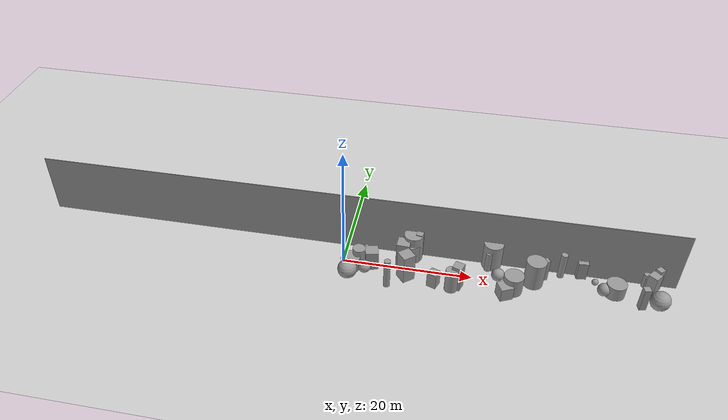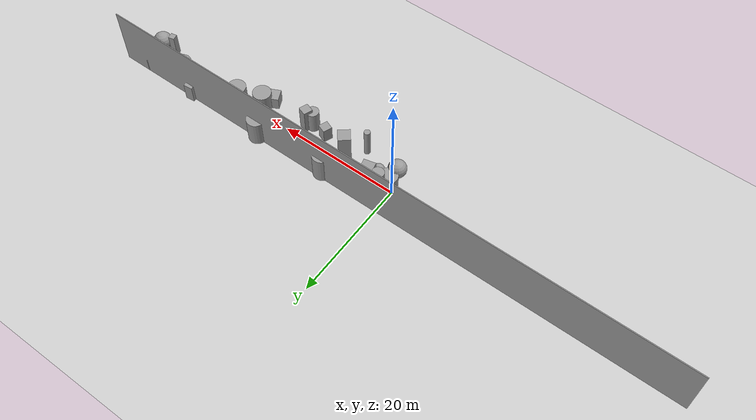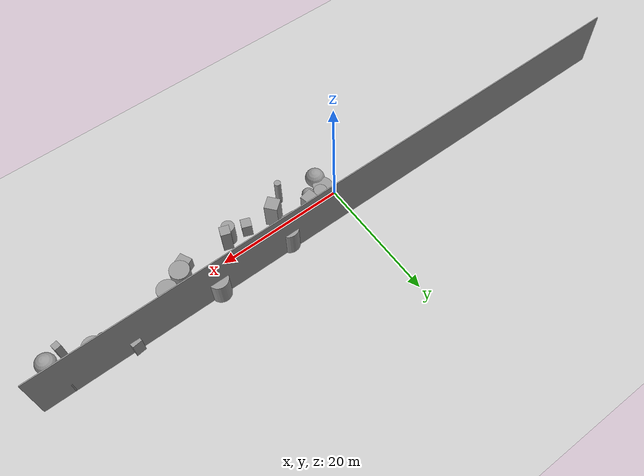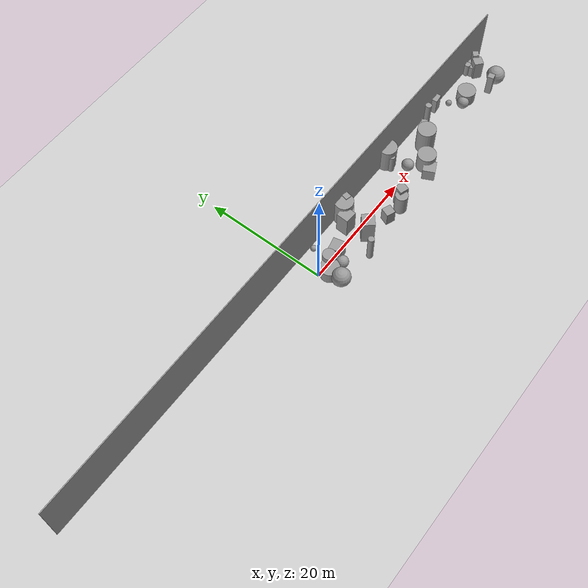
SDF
<sdf version="1.6">
 <world name="default">
  <model name="ground_plane">
   <static>1</static>
   <link name="link">
    <collision name="collision">
     <geometry><plane><normal>0 0 1</normal><size>100 100</size></plane></geometry>
     <surface>
      <contact><collide_bitmask>65535</collide_bitmask></contact>
      <friction><ode><mu>100</mu><mu2>50</mu2></ode></friction>
     </surface>
    </collision>
    <visual name="visual">
     <cast_shadows>0</cast_shadows>
     <geometry><plane><normal>0 0 1</normal><size>100 100</size></plane></geometry>
     <material>
      <script><uri>file://media/materials/scripts/gazebo.material</uri><name>Gazebo/Grey</name></script>
     </material>
    </visual>
   </link>
  </model>
  <model name="wall_100m_clone">
   <link name="Wall_0">
    <pose>2e-06 0 0 0 -0 3.14159</pose>
    <inertial>
     <mass>1</mass>
     <inertia><ixx>1</ixx><ixy>0</ixy><ixz>0</ixz><iyy>1</iyy><iyz>0</iyz><izz>1</izz></inertia>
    </inertial>
    <visual name="Wall_0_Visual">
     <pose>0 0 1.25 0 -0 0</pose>
     <geometry><box><size>100.75 0.15 10</size></box></geometry>
     <material>
      <script><uri>file://media/materials/scripts/gazebo.material</uri><name>Gazebo/Grey</name></script>
      <ambient>1 1 1 1</ambient>
      <shader type="vertex"><normal_map>__default__</normal_map></shader>
      <diffuse>0.7 0.7 0.7 1</diffuse>
      <specular>0.01 0.01 0.01 1</specular>
      <emissive>0 0 0 1</emissive>
     </material>
     <meta><layer>0</layer></meta>
    </visual>
    <collision name="Wall_0_Collision">
     <pose>0 0 1.25 0 -0 0</pose>
     <geometry><box><size>100.75 0.15 10</size></box></geometry>
     <surface>
      <friction>
       <ode><mu>1</mu><mu2>1</mu2><fdir1>0 0 0</fdir1><slip1>0</slip1><slip2>0</slip2></ode>
       <torsional>
        <coefficient>1</coefficient>
        <patch_radius>0</patch_radius>
        <surface_radius>0</surface_radius>
        <use_patch_radius>1</use_patch_radius>
        <ode><slip>0</slip></ode>
       </torsional>
      </friction>
      <bounce><restitution_coefficient>0</restitution_coefficient><threshold>1e+06</threshold></bounce>
      <contact>
       <collide_without_contact>0</collide_without_contact>
       <collide_without_contact_bitmask>1</collide_without_contact_bitmask>
       <collide_bitmask>1</collide_bitmask>
       <ode>
        <soft_cfm>0</soft_cfm>
        <soft_erp>0.2</soft_erp>
        <kp>1e+13</kp>
        <kd>1</kd>
        <max_vel>0.01</max_vel>
        <min_depth>0</min_depth>
       </ode>
       <bullet>
        <split_impulse>1</split_impulse>
        <split_impulse_penetration_threshold>-0.01</split_impulse_penetration_threshold>
        <soft_cfm>0</soft_cfm>
        <soft_erp>0.2</soft_erp>
        <kp>1e+13</kp>
        <kd>1</kd>
       </bullet>
      </contact>
     </surface>
    </collision>
   </link>
   <static>1</static>
   <pose>-0.005816 4 3.5 0 -0 0</pose>
  </model>
  <model name="large_box_0">
   <static>1</static>
   <pose>24.97334898626285 -2.784041211516433 0 0 -0 5.162409846723457</pose>
   <link name="link">
    <inertial>
     <mass>1</mass>
     <inertia><ixx>0.1</ixx><ixy>0</ixy><ixz>0</ixz><iyy>0.1</iyy><iyz>0</iyz><izz>0.1</izz></inertia>
    </inertial>
    <collision name="collision"><geometry><box><size>2 2 4.185259446446912</size></box></geometry></collision>
    <visual name="visual">
     <geometry><box><size>2 2 4.185259446446912</size></box></geometry>
     <material>
      <script><name>Gazebo/Grey</name><uri>file://media/materials/scripts/gazebo.material</uri></script>
     </material>
    </visual>
   </link>
  </model>
  <model name="large_box_1">
   <static>1</static>
   <pose>4.48278564626515 -0.060033811688840366 0 0 -0 0.2246602645358547</pose>
   <link name="link">
    <inertial>
     <mass>1</mass>
     <inertia><ixx>0.1</ixx><ixy>0</ixy><ixz>0</ixz><iyy>0.1</iyy><iyz>0</iyz><izz>0.1</izz></inertia>
    </inertial>
    <collision name="collision"><geometry><box><size>2 2 6.144499502971806</size></box></geometry></collision>
    <visual name="visual">
     <geometry><box><size>2 2 6.144499502971806</size></box></geometry>
     <material>
      <script><name>Gazebo/Grey</name><uri>file://media/materials/scripts/gazebo.material</uri></script>
     </material>
    </visual>
   </link>
  </model>
  <model name="large_box_5">
   <static>1</static>
   <pose>10.021285733601083 -1.6430827092085796 0 0 -0 3.831675396217733</pose>
   <link name="link">
    <inertial>
     <mass>1</mass>
     <inertia><ixx>0.1</ixx><ixy>0</ixy><ixz>0</ixz><iyy>0.1</iyy><iyz>0</iyz><izz>0.1</izz></inertia>
    </inertial>
    <collision name="collision"><geometry><box><size>2 2 9.188406183122428</size></box></geometry></collision>
    <visual name="visual">
     <geometry><box><size>2 2 9.188406183122428</size></box></geometry>
     <material>
      <script><name>Gazebo/Grey</name><uri>file://media/materials/scripts/gazebo.material</uri></script>
     </material>
    </visual>
   </link>
  </model>
  <model name="large_box_7">
   <static>1</static>
   <pose>9.186697335708594 1.745574742512943 0 0 -0 3.089982164949194</pose>
   <link name="link">
    <inertial>
     <mass>1</mass>
     <inertia><ixx>0.1</ixx><ixy>0</ixy><ixz>0</ixz><iyy>0.1</iyy><iyz>0</iyz><izz>0.1</izz></inertia>
    </inertial>
    <collision name="collision"><geometry><box><size>2 2 7.926003502715643</size></box></geometry></collision>
    <visual name="visual">
     <geometry><box><size>2 2 7.926003502715643</size></box></geometry>
     <material>
      <script><name>Gazebo/Grey</name><uri>file://media/materials/scripts/gazebo.material</uri></script>
     </material>
    </visual>
   </link>
  </model>
  <model name="medium_box_0">
   <static>1</static>
   <pose>10.613503749832773 2.215840876964541 0 0 -0 3.746291765795518</pose>
   <link name="link">
    <inertial>
     <mass>1</mass>
     <inertia><ixx>0.1</ixx><ixy>0</ixy><ixz>0</ixz><iyy>0.1</iyy><iyz>0</iyz><izz>0.1</izz></inertia>
    </inertial>
    <collision name="collision">
     <geometry><box><size>1.5 1.5 6.1490139299434095</size></box></geometry>
    </collision>
    <visual name="visual">
     <geometry><box><size>1.5 1.5 6.1490139299434095</size></box></geometry>
     <material>
      <script><name>Gazebo/Grey</name><uri>file://media/materials/scripts/gazebo.material</uri></script>
     </material>
    </visual>
   </link>
  </model>
  <model name="medium_box_2">
   <static>1</static>
   <pose>46.47040686956183 2.2469015180753615 0 0 -0 0.8912918702350284</pose>
   <link name="link">
    <inertial>
     <mass>1</mass>
     <inertia><ixx>0.1</ixx><ixy>0</ixy><ixz>0</ixz><iyy>0.1</iyy><iyz>0</iyz><izz>0.1</izz></inertia>
    </inertial>
    <collision name="collision"><geometry><box><size>1.5 1.5 6.781007562581773</size></box></geometry></collision>
    <visual name="visual">
     <geometry><box><size>1.5 1.5 6.781007562581773</size></box></geometry>
     <material>
      <script><name>Gazebo/Grey</name><uri>file://media/materials/scripts/gazebo.material</uri></script>
     </material>
    </visual>
   </link>
  </model>
  <model name="medium_box_3">
   <static>1</static>
   <pose>36.27735106296487 3.8948235060236103 0 0 -0 0.1131438297701241</pose>
   <link name="link">
    <inertial>
     <mass>1</mass>
     <inertia><ixx>0.1</ixx><ixy>0</ixy><ixz>0</ixz><iyy>0.1</iyy><iyz>0</iyz><izz>0.1</izz></inertia>
    </inertial>
    <collision name="collision"><geometry><box><size>1.5 1.5 5.784708206677331</size></box></geometry></collision>
    <visual name="visual">
     <geometry><box><size>1.5 1.5 5.784708206677331</size></box></geometry>
     <material>
      <script><name>Gazebo/Grey</name><uri>file://media/materials/scripts/gazebo.material</uri></script>
     </material>
    </visual>
   </link>
  </model>
  <model name="medium_box_4">
   <static>1</static>
   <pose>17.883482365314308 -2.240913391343094 0 0 -0 4.378584371314193</pose>
   <link name="link">
    <inertial>
     <mass>1</mass>
     <inertia><ixx>0.1</ixx><ixy>0</ixy><ixz>0</ixz><iyy>0.1</iyy><iyz>0</iyz><izz>0.1</izz></inertia>
    </inertial>
    <collision name="collision"><geometry><box><size>1.5 1.5 8.443509254106766</size></box></geometry></collision>
    <visual name="visual">
     <geometry><box><size>1.5 1.5 8.443509254106766</size></box></geometry>
     <material>
      <script><name>Gazebo/Grey</name><uri>file://media/materials/scripts/gazebo.material</uri></script>
     </material>
    </visual>
   </link>
  </model>
  <model name="medium_box_7">
   <static>1</static>
   <pose>14.343382034341332 -2.442887480312587 0 0 -0 4.344643798303806</pose>
   <link name="link">
    <inertial>
     <mass>1</mass>
     <inertia><ixx>0.1</ixx><ixy>0</ixy><ixz>0</ixz><iyy>0.1</iyy><iyz>0</iyz><izz>0.1</izz></inertia>
    </inertial>
    <collision name="collision"><geometry><box><size>1.5 1.5 4.879338959757298</size></box></geometry></collision>
    <visual name="visual">
     <geometry><box><size>1.5 1.5 4.879338959757298</size></box></geometry>
     <material>
      <script><name>Gazebo/Grey</name><uri>file://media/materials/scripts/gazebo.material</uri></script>
     </material>
    </visual>
   </link>
  </model>
  <model name="small_box_3">
   <static>1</static>
   <pose>11.435817942279016 3.366828281748975 0 0 -0 2.901708720966725</pose>
   <link name="link">
    <inertial>
     <mass>1</mass>
     <inertia><ixx>0.1</ixx><ixy>0</ixy><ixz>0</ixz><iyy>0.1</iyy><iyz>0</iyz><izz>0.1</izz></inertia>
    </inertial>
    <collision name="collision"><geometry><box><size>1 1 9.26267012684626</size></box></geometry></collision>
    <visual name="visual">
     <geometry><box><size>1 1 9.26267012684626</size></box></geometry>
     <material>
      <script><name>Gazebo/Grey</name><uri>file://media/materials/scripts/gazebo.material</uri></script>
     </material>
    </visual>
   </link>
  </model>
  <model name="small_box_4">
   <static>1</static>
   <pose>47.213152912770255 3.2251074036061205 0 0 -0 3.8473000729051363</pose>
   <link name="link">
    <inertial>
     <mass>1</mass>
     <inertia><ixx>0.1</ixx><ixy>0</ixy><ixz>0</ixz><iyy>0.1</iyy><iyz>0</iyz><izz>0.1</izz></inertia>
    </inertial>
    <collision name="collision"><geometry><box><size>1 1 7.573525912562241</size></box></geometry></collision>
    <visual name="visual">
     <geometry><box><size>1 1 7.573525912562241</size></box></geometry>
     <material>
      <script><name>Gazebo/Grey</name><uri>file://media/materials/scripts/gazebo.material</uri></script>
     </material>
    </visual>
   </link>
  </model>
  <model name="small_box_5">
   <static>1</static>
   <pose>30.626488703228446 2.19151443933199 0 0 -0 5.171373419951936</pose>
   <link name="link">
    <inertial>
     <mass>1</mass>
     <inertia><ixx>0.1</ixx><ixy>0</ixy><ixz>0</ixz><iyy>0.1</iyy><iyz>0</iyz><izz>0.1</izz></inertia>
    </inertial>
    <collision name="collision"><geometry><box><size>1 1 7.190933373320822</size></box></geometry></collision>
    <visual name="visual">
     <geometry><box><size>1 1 7.190933373320822</size></box></geometry>
     <material>
      <script><name>Gazebo/Grey</name><uri>file://media/materials/scripts/gazebo.material</uri></script>
     </material>
    </visual>
   </link>
  </model>
  <model name="small_box_6">
   <static>1</static>
   <pose>22.802732221344613 2.9435298341549476 0 0 -0 0.6608814539785213</pose>
   <link name="link">
    <inertial>
     <mass>1</mass>
     <inertia><ixx>0.1</ixx><ixy>0</ixy><ixz>0</ixz><iyy>0.1</iyy><iyz>0</iyz><izz>0.1</izz></inertia>
    </inertial>
    <collision name="collision"><geometry><box><size>1 1 4.916839086045156</size></box></geometry></collision>
    <visual name="visual">
     <geometry><box><size>1 1 4.916839086045156</size></box></geometry>
     <material>
      <script><name>Gazebo/Grey</name><uri>file://media/materials/scripts/gazebo.material</uri></script>
     </material>
    </visual>
   </link>
  </model>
  <model name="small_box_7">
   <static>1</static>
   <pose>44.84834342603591 -1.3089709380101207 0 0 -0 3.353434014139593</pose>
   <link name="link">
    <inertial>
     <mass>1</mass>
     <inertia><ixx>0.1</ixx><ixy>0</ixy><ixz>0</ixz><iyy>0.1</iyy><iyz>0</iyz><izz>0.1</izz></inertia>
    </inertial>
    <collision name="collision"><geometry><box><size>1 1 7.466287590723288</size></box></geometry></collision>
    <visual name="visual">
     <geometry><box><size>1 1 7.466287590723288</size></box></geometry>
     <material>
      <script><name>Gazebo/Grey</name><uri>file://media/materials/scripts/gazebo.material</uri></script>
     </material>
    </visual>
   </link>
  </model>
  <model name="large_sphere_0">
   <static>1</static>
   <pose>47.19687079818057 -1.030767676966069 1.5 0 -0 0.6009606088062183</pose>
   <link name="link">
    <inertial>
     <mass>1</mass>
     <inertia><ixx>0.1</ixx><ixy>0</ixy><ixz>0</ixz><iyy>0.1</iyy><iyz>0</iyz><izz>0.1</izz></inertia>
    </inertial>
    <collision name="collision"><geometry><sphere><radius>1.5</radius></sphere></geometry></collision>
    <visual name="visual">
     <geometry><sphere><radius>1.5</radius></sphere></geometry>
     <material>
      <script><name>Gazebo/Grey</name><uri>file://media/materials/scripts/gazebo.material</uri></script>
     </material>
    </visual>
   </link>
  </model>
  <model name="large_sphere_6">
   <static>1</static>
   <pose>1.282083478474128 -3.2378479154429565 1.5 0 -0 4.91846744530056</pose>
   <link name="link">
    <inertial>
     <mass>1</mass>
     <inertia><ixx>0.1</ixx><ixy>0</ixy><ixz>0</ixz><iyy>0.1</iyy><iyz>0</iyz><izz>0.1</izz></inertia>
    </inertial>
    <collision name="collision"><geometry><sphere><radius>1.5</radius></sphere></geometry></collision>
    <visual name="visual">
     <geometry><sphere><radius>1.5</radius></sphere></geometry>
     <material>
      <script><name>Gazebo/Grey</name><uri>file://media/materials/scripts/gazebo.material</uri></script>
     </material>
    </visual>
   </link>
  </model>
  <model name="medium_sphere_0">
   <static>1</static>
   <pose>23.85624809785267 0.46245080166619523 1 0 -0 3.9382456861004314</pose>
   <link name="link">
    <inertial>
     <mass>1</mass>
     <inertia><ixx>0.1</ixx><ixy>0</ixy><ixz>0</ixz><iyy>0.1</iyy><iyz>0</iyz><izz>0.1</izz></inertia>
    </inertial>
    <collision name="collision"><geometry><sphere><radius>1</radius></sphere></geometry></collision>
    <visual name="visual">
     <geometry><sphere><radius>1</radius></sphere></geometry>
     <material>
      <script><name>Gazebo/Grey</name><uri>file://media/materials/scripts/gazebo.material</uri></script>
     </material>
    </visual>
   </link>
  </model>
  <model name="medium_sphere_3">
   <static>1</static>
   <pose>1.684721347891319 -1.4979459305977825 1 0 -0 5.738336717971444</pose>
   <link name="link">
    <inertial>
     <mass>1</mass>
     <inertia><ixx>0.1</ixx><ixy>0</ixy><ixz>0</ixz><iyy>0.1</iyy><iyz>0</iyz><izz>0.1</izz></inertia>
    </inertial>
    <collision name="collision"><geometry><sphere><radius>1</radius></sphere></geometry></collision>
    <visual name="visual">
     <geometry><sphere><radius>1</radius></sphere></geometry>
     <material>
      <script><name>Gazebo/Grey</name><uri>file://media/materials/scripts/gazebo.material</uri></script>
     </material>
    </visual>
   </link>
  </model>
  <model name="medium_sphere_5">
   <static>1</static>
   <pose>39.47202937903673 0.31809078242671784 1 0 -0 2.2118419279176433</pose>
   <link name="link">
    <inertial>
     <mass>1</mass>
     <inertia><ixx>0.1</ixx><ixy>0</ixy><ixz>0</ixz><iyy>0.1</iyy><iyz>0</iyz><izz>0.1</izz></inertia>
    </inertial>
    <collision name="collision"><geometry><sphere><radius>1</radius></sphere></geometry></collision>
    <visual name="visual">
     <geometry><sphere><radius>1</radius></sphere></geometry>
     <material>
      <script><name>Gazebo/Grey</name><uri>file://media/materials/scripts/gazebo.material</uri></script>
     </material>
    </visual>
   </link>
  </model>
  <model name="medium_sphere_6">
   <static>1</static>
   <pose>3.6624800811392717 -1.6862516741703573 1 0 -0 4.382142134886858</pose>
   <link name="link">
    <inertial>
     <mass>1</mass>
     <inertia><ixx>0.1</ixx><ixy>0</ixy><ixz>0</ixz><iyy>0.1</iyy><iyz>0</iyz><izz>0.1</izz></inertia>
    </inertial>
    <collision name="collision"><geometry><sphere><radius>1</radius></sphere></geometry></collision>
    <visual name="visual">
     <geometry><sphere><radius>1</radius></sphere></geometry>
     <material>
      <script><name>Gazebo/Grey</name><uri>file://media/materials/scripts/gazebo.material</uri></script>
     </material>
    </visual>
   </link>
  </model>
  <model name="small_sphere_0">
   <static>1</static>
   <pose>10.84196736958937 2.382685933546358 0.5 0 -0 1.252408197404635</pose>
   <link name="link">
    <inertial>
     <mass>1</mass>
     <inertia><ixx>0.1</ixx><ixy>0</ixy><ixz>0</ixz><iyy>0.1</iyy><iyz>0</iyz><izz>0.1</izz></inertia>
    </inertial>
    <collision name="collision"><geometry><sphere><radius>0.5</radius></sphere></geometry></collision>
    <visual name="visual">
     <geometry><sphere><radius>0.5</radius></sphere></geometry>
     <material>
      <script><name>Gazebo/Grey</name><uri>file://media/materials/scripts/gazebo.material</uri></script>
     </material>
    </visual>
   </link>
  </model>
  <model name="small_sphere_2">
   <static>1</static>
   <pose>3.141878526392972 3.2233707503179865 0.5 0 -0 4.755350014668903</pose>
   <link name="link">
    <inertial>
     <mass>1</mass>
     <inertia><ixx>0.1</ixx><ixy>0</ixy><ixz>0</ixz><iyy>0.1</iyy><iyz>0</iyz><izz>0.1</izz></inertia>
    </inertial>
    <collision name="collision"><geometry><sphere><radius>0.5</radius></sphere></geometry></collision>
    <visual name="visual">
     <geometry><sphere><radius>0.5</radius></sphere></geometry>
     <material>
      <script><name>Gazebo/Grey</name><uri>file://media/materials/scripts/gazebo.material</uri></script>
     </material>
    </visual>
   </link>
  </model>
  <model name="small_sphere_5">
   <static>1</static>
   <pose>38.347334091613234 2.2483012421794992 0.5 0 -0 6.206921151463454</pose>
   <link name="link">
    <inertial>
     <mass>1</mass>
     <inertia><ixx>0.1</ixx><ixy>0</ixy><ixz>0</ixz><iyy>0.1</iyy><iyz>0</iyz><izz>0.1</izz></inertia>
    </inertial>
    <collision name="collision"><geometry><sphere><radius>0.5</radius></sphere></geometry></collision>
    <visual name="visual">
     <geometry><sphere><radius>0.5</radius></sphere></geometry>
     <material>
      <script><name>Gazebo/Grey</name><uri>file://media/materials/scripts/gazebo.material</uri></script>
     </material>
    </visual>
   </link>
  </model>
  <model name="large_cylinder_0">
   <static>1</static>
   <pose>22.769020695677696 3.7406750157988347 0 0 -0 6.182041956455456</pose>
   <link name="link">
    <inertial>
     <mass>1</mass>
     <inertia><ixx>0.1</ixx><ixy>0</ixy><ixz>0</ixz><iyy>0.1</iyy><iyz>0</iyz><izz>0.1</izz></inertia>
    </inertial>
    <collision name="collision">
     <geometry><cylinder><radius>1.5</radius><length>8.492661074974656</length></cylinder></geometry>
    </collision>
    <visual name="visual">
     <geometry><cylinder><radius>1.5</radius><length>8.492661074974656</length></cylinder></geometry>
     <material>
      <script><name>Gazebo/Grey</name><uri>file://media/materials/scripts/gazebo.material</uri></script>
     </material>
    </visual>
   </link>
  </model>
  <model name="large_cylinder_1">
   <static>1</static>
   <pose>1.374779915391258 -1.0958100301490008 0 0 -0 1.60520081282919</pose>
   <link name="link">
    <inertial>
     <mass>1</mass>
     <inertia><ixx>0.1</ixx><ixy>0</ixy><ixz>0</ixz><iyy>0.1</iyy><iyz>0</iyz><izz>0.1</izz></inertia>
    </inertial>
    <collision name="collision">
     <geometry><cylinder><radius>1.5</radius><length>4.1554608777832645</length></cylinder></geometry>
    </collision>
    <visual name="visual">
     <geometry><cylinder><radius>1.5</radius><length>4.1554608777832645</length></cylinder></geometry>
     <material>
      <script><name>Gazebo/Grey</name><uri>file://media/materials/scripts/gazebo.material</uri></script>
     </material>
    </visual>
   </link>
  </model>
  <model name="large_cylinder_4">
   <static>1</static>
   <pose>10.512269878803139 3.162599388256888 0 0 -0 3.959342919580597</pose>
   <link name="link">
    <inertial>
     <mass>1</mass>
     <inertia><ixx>0.1</ixx><ixy>0</ixy><ixz>0</ixz><iyy>0.1</iyy><iyz>0</iyz><izz>0.1</izz></inertia>
    </inertial>
    <collision name="collision">
     <geometry><cylinder><radius>1.5</radius><length>8.973746996977486</length></cylinder></geometry>
    </collision>
    <visual name="visual">
     <geometry><cylinder><radius>1.5</radius><length>8.973746996977486</length></cylinder></geometry>
     <material>
      <script><name>Gazebo/Grey</name><uri>file://media/materials/scripts/gazebo.material</uri></script>
     </material>
    </visual>
   </link>
  </model>
  <model name="large_cylinder_5">
   <static>1</static>
   <pose>26.122087106910925 -1.424816526135892 0 0 -0 3.8430624784525196</pose>
   <link name="link">
    <inertial>
     <mass>1</mass>
     <inertia><ixx>0.1</ixx><ixy>0</ixy><ixz>0</ixz><iyy>0.1</iyy><iyz>0</iyz><izz>0.1</izz></inertia>
    </inertial>
    <collision name="collision">
     <geometry><cylinder><radius>1.5</radius><length>6.028696423209399</length></cylinder></geometry>
    </collision>
    <visual name="visual">
     <geometry><cylinder><radius>1.5</radius><length>6.028696423209399</length></cylinder></geometry>
     <material>
      <script><name>Gazebo/Grey</name><uri>file://media/materials/scripts/gazebo.material</uri></script>
     </material>
    </visual>
   </link>
  </model>
  <model name="large_cylinder_6">
   <static>1</static>
   <pose>29.170906194660645 0.8055366531265946 0 0 -0 5.9823235012097</pose>
   <link name="link">
    <inertial>
     <mass>1</mass>
     <inertia><ixx>0.1</ixx><ixy>0</ixy><ixz>0</ixz><iyy>0.1</iyy><iyz>0</iyz><izz>0.1</izz></inertia>
    </inertial>
    <collision name="collision">
     <geometry><cylinder><radius>1.5</radius><length>8.733983126871873</length></cylinder></geometry>
    </collision>
    <visual name="visual">
     <geometry><cylinder><radius>1.5</radius><length>8.733983126871873</length></cylinder></geometry>
     <material>
      <script><name>Gazebo/Grey</name><uri>file://media/materials/scripts/gazebo.material</uri></script>
     </material>
    </visual>
   </link>
  </model>
  <model name="large_cylinder_7">
   <static>1</static>
   <pose>41.160919088792355 0.8142165497810732 0 0 -0 5.0172159553180675</pose>
   <link name="link">
    <inertial>
     <mass>1</mass>
     <inertia><ixx>0.1</ixx><ixy>0</ixy><ixz>0</ixz><iyy>0.1</iyy><iyz>0</iyz><izz>0.1</izz></inertia>
    </inertial>
    <collision name="collision">
     <geometry><cylinder><radius>1.5</radius><length>4.24948830974987</length></cylinder></geometry>
    </collision>
    <visual name="visual">
     <geometry><cylinder><radius>1.5</radius><length>4.24948830974987</length></cylinder></geometry>
     <material>
      <script><name>Gazebo/Grey</name><uri>file://media/materials/scripts/gazebo.material</uri></script>
     </material>
    </visual>
   </link>
  </model>
  <model name="medium_cylinder_2">
   <static>1</static>
   <pose>17.067848487050455 -2.858678077212816 0 0 -0 0.23668545999935212</pose>
   <link name="link">
    <inertial>
     <mass>1</mass>
     <inertia><ixx>0.1</ixx><ixy>0</ixy><ixz>0</ixz><iyy>0.1</iyy><iyz>0</iyz><izz>0.1</izz></inertia>
    </inertial>
    <collision name="collision">
     <geometry><cylinder><radius>1</radius><length>7.325840383997756</length></cylinder></geometry>
    </collision>
    <visual name="visual">
     <geometry><cylinder><radius>1</radius><length>7.325840383997756</length></cylinder></geometry>
     <material>
      <script><name>Gazebo/Grey</name><uri>file://media/materials/scripts/gazebo.material</uri></script>
     </material>
    </visual>
   </link>
  </model>
  <model name="medium_cylinder_5">
   <static>1</static>
   <pose>46.52007613071079 3.0368515204210693 0 0 -0 3.602334068353975</pose>
   <link name="link">
    <inertial>
     <mass>1</mass>
     <inertia><ixx>0.1</ixx><ixy>0</ixy><ixz>0</ixz><iyy>0.1</iyy><iyz>0</iyz><izz>0.1</izz></inertia>
    </inertial>
    <collision name="collision">
     <geometry><cylinder><radius>1</radius><length>4.049205252592204</length></cylinder></geometry>
    </collision>
    <visual name="visual">
     <geometry><cylinder><radius>1</radius><length>4.049205252592204</length></cylinder></geometry>
     <material>
      <script><name>Gazebo/Grey</name><uri>file://media/materials/scripts/gazebo.material</uri></script>
     </material>
    </visual>
   </link>
  </model>
  <model name="medium_cylinder_6">
   <static>1</static>
   <pose>2.5275136455732223 -0.06518346883846426 0 0 -0 3.959232859422814</pose>
   <link name="link">
    <inertial>
     <mass>1</mass>
     <inertia><ixx>0.1</ixx><ixy>0</ixy><ixz>0</ixz><iyy>0.1</iyy><iyz>0</iyz><izz>0.1</izz></inertia>
    </inertial>
    <collision name="collision">
     <geometry><cylinder><radius>1</radius><length>6.228928136928735</length></cylinder></geometry>
    </collision>
    <visual name="visual">
     <geometry><cylinder><radius>1</radius><length>6.228928136928735</length></cylinder></geometry>
     <material>
      <script><name>Gazebo/Grey</name><uri>file://media/materials/scripts/gazebo.material</uri></script>
     </material>
    </visual>
   </link>
  </model>
  <model name="small_cylinder_2">
   <static>1</static>
   <pose>22.243420960817986 2.498042406298101 0 0 -0 6.073869643277757</pose>
   <link name="link">
    <inertial>
     <mass>1</mass>
     <inertia><ixx>0.1</ixx><ixy>0</ixy><ixz>0</ixz><iyy>0.1</iyy><iyz>0</iyz><izz>0.1</izz></inertia>
    </inertial>
    <collision name="collision">
     <geometry><cylinder><radius>0.5</radius><length>6.475819067372645</length></cylinder></geometry>
    </collision>
    <visual name="visual">
     <geometry><cylinder><radius>0.5</radius><length>6.475819067372645</length></cylinder></geometry>
     <material>
      <script><name>Gazebo/Grey</name><uri>file://media/materials/scripts/gazebo.material</uri></script>
     </material>
    </visual>
   </link>
  </model>
  <model name="small_cylinder_3">
   <static>1</static>
   <pose>33.28617524472108 3.2252839178666406 0 0 -0 0.4839041936559756</pose>
   <link name="link">
    <inertial>
     <mass>1</mass>
     <inertia><ixx>0.1</ixx><ixy>0</ixy><ixz>0</ixz><iyy>0.1</iyy><iyz>0</iyz><izz>0.1</izz></inertia>
    </inertial>
    <collision name="collision">
     <geometry><cylinder><radius>0.5</radius><length>8.522922632145619</length></cylinder></geometry>
    </collision>
    <visual name="visual">
     <geometry><cylinder><radius>0.5</radius><length>8.522922632145619</length></cylinder></geometry>
     <material>
      <script><name>Gazebo/Grey</name><uri>file://media/materials/scripts/gazebo.material</uri></script>
     </material>
    </visual>
   </link>
  </model>
  <model name="small_cylinder_4">
   <static>1</static>
   <pose>7.47699143270939 -3.9856217665613114 0 0 -0 5.563327820975327</pose>
   <link name="link">
    <inertial>
     <mass>1</mass>
     <inertia><ixx>0.1</ixx><ixy>0</ixy><ixz>0</ixz><iyy>0.1</iyy><iyz>0</iyz><izz>0.1</izz></inertia>
    </inertial>
    <collision name="collision">
     <geometry><cylinder><radius>0.5</radius><length>9.64539853092455</length></cylinder></geometry>
    </collision>
    <visual name="visual">
     <geometry><cylinder><radius>0.5</radius><length>9.64539853092455</length></cylinder></geometry>
     <material>
      <script><name>Gazebo/Grey</name><uri>file://media/materials/scripts/gazebo.material</uri></script>
     </material>
    </visual>
   </link>
  </model>
  <model name="small_cylinder_6">
   <static>1</static>
   <pose>45.710222235004636 3.5864684373028703 0 0 -0 3.536552112515773</pose>
   <link name="link">
    <inertial>
     <mass>1</mass>
     <inertia><ixx>0.1</ixx><ixy>0</ixy><ixz>0</ixz><iyy>0.1</iyy><iyz>0</iyz><izz>0.1</izz></inertia>
    </inertial>
    <collision name="collision">
     <geometry><cylinder><radius>0.5</radius><length>4.5718540677916915</length></cylinder></geometry>
    </collision>
    <visual name="visual">
     <geometry><cylinder><radius>0.5</radius><length>4.5718540677916915</length></cylinder></geometry>
     <material>
      <script><name>Gazebo/Grey</name><uri>file://media/materials/scripts/gazebo.material</uri></script>
     </material>
    </visual>
   </link>
  </model>
 </world>
</sdf>
